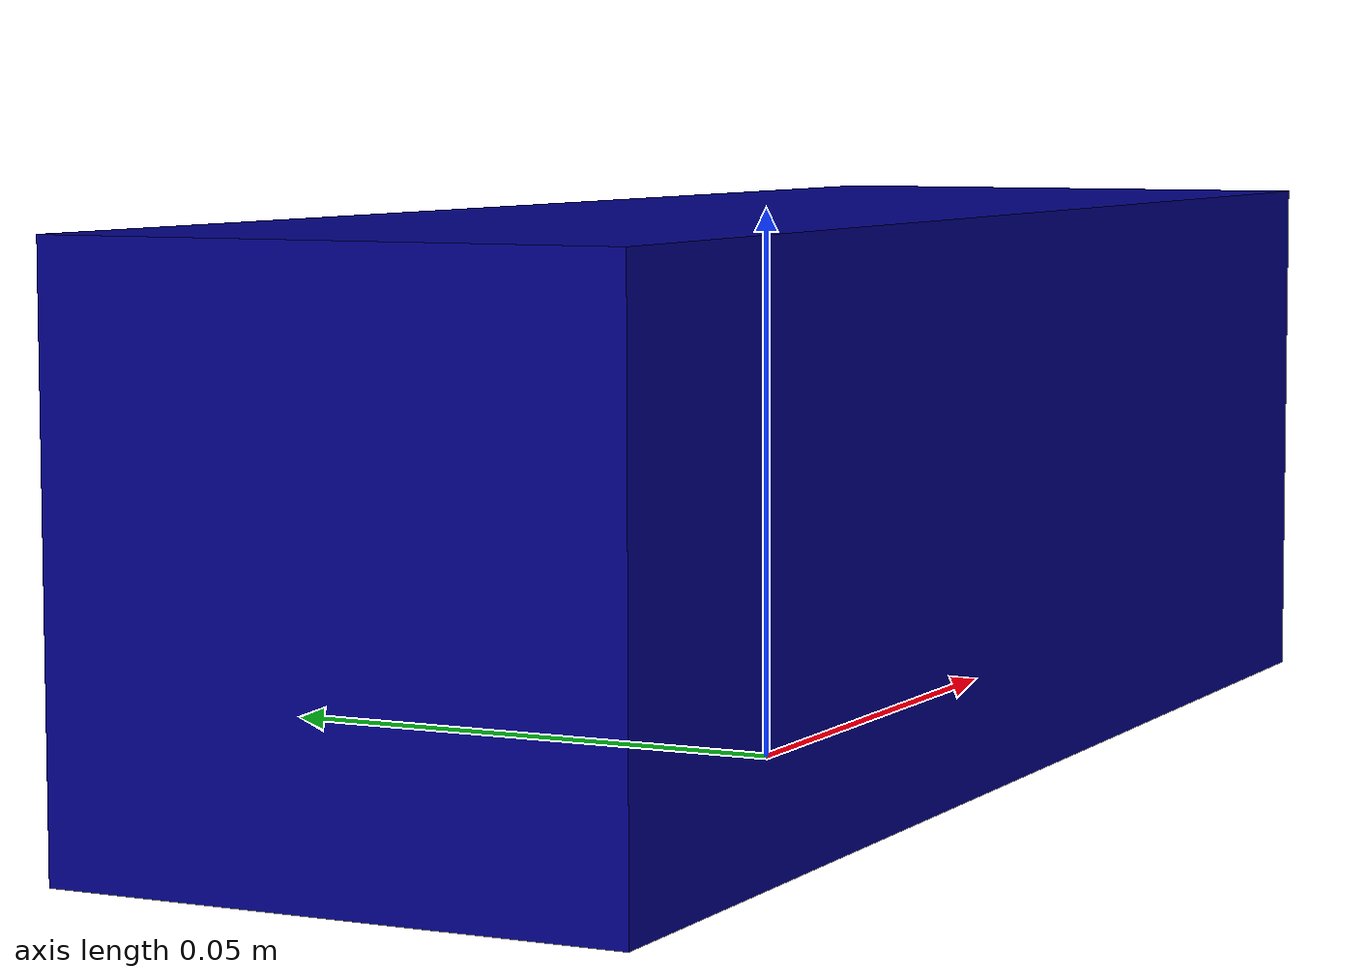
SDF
<?xml version="1.0"?>
<sdf version='1.6'>
<model name="peg">
  <link name="base_link">
    <inertial>
      <pose frame=''>0 0 0.025 0 0 0 </pose>
      <mass>0.028</mass>
        <inertia>
          <ixx>1.17e-5</ixx>
          <ixy>0</ixy>
          <ixz>0</ixz>
          <iyy>1.9e-5</iyy>
          <iyz>0</iyz>
          <izz>1.9e-5</izz>
        </inertia>
    </inertial>
    <visual name='base_link'>
      <pose frame=''>0 0 0.025 0 0 0</pose>
      <geometry>
        <box>
          <size>0.15 0.05 0.05</size>
        </box>
      </geometry>
      <material>
        <diffuse>0.0 0.0 0.545 1.0</diffuse>
      </material>
    </visual>

    <collision name='box_collision'>
      <pose>0 0 0.025 0 0 0</pose>
      <geometry>
        <box>
          <size>0.145 0.049 0.049</size>
        </box>
      </geometry>
      <material>
        <diffuse>0 1 0 1.0</diffuse>
      </material>
    </collision>

   </link>
</model>
</sdf>
